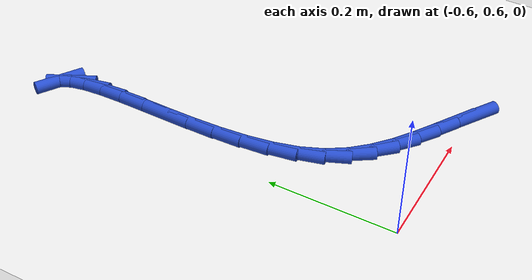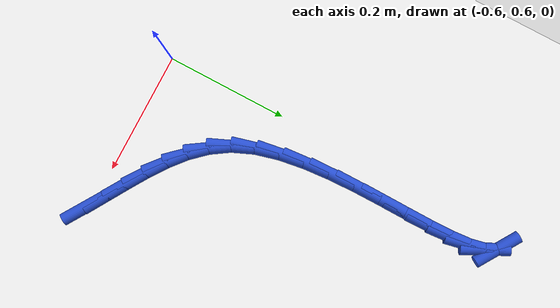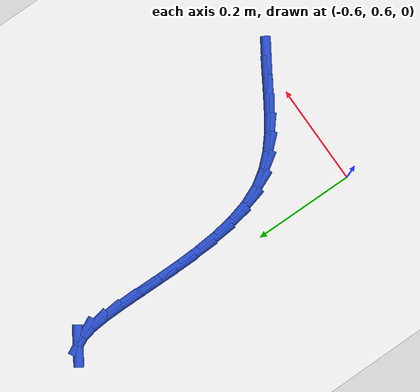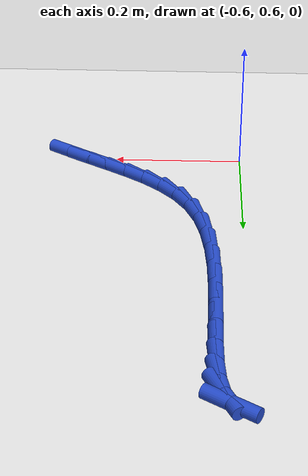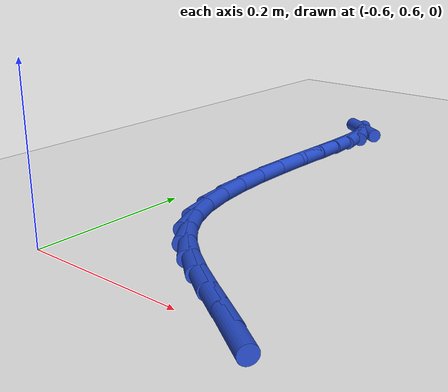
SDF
<sdf version="1.6">
 <world name="default">
  <model name="ground_plane">
   <static>1</static>
   <link name="link">
    <collision name="collision">
     <geometry><plane><normal>0 0 1</normal><size>100 100</size></plane></geometry>
     <surface><friction><ode><mu>100</mu><mu2>50</mu2></ode></friction></surface>
    </collision>
    <visual name="visual">
     <cast_shadows>0</cast_shadows>
     <geometry><plane><normal>0 0 1</normal><size>100 100</size></plane></geometry>
     <material>
      <script><uri>file://media/materials/scripts/gazebo.material</uri><name>Gazebo/WhiteGlow</name></script>
     </material>
    </visual>
   </link>
  </model>
  <model name="line">
   <link name="link_20">
    <pose>-0.3271856868290107 0.594201679285389 0.01 0 1.57 -0.566697601157017</pose>
    <collision name="collision">
     <geometry><cylinder><radius>0.01</radius><length>0.08</length></cylinder></geometry>
    </collision>
    <visual name="visual">
     <material>
      <script><name>Gazebo/Blue</name><uri>file://media/materials/scripts/gazebo.material</uri></script>
     </material>
     <geometry><cylinder><radius>0.01</radius><length>0.08</length></cylinder></geometry>
    </visual>
   </link>
   <link name="link_21">
    <pose>-0.35832002851226646 0.6140130592247995 0.01 0 1.57 -0.5486065865079678</pose>
    <collision name="collision">
     <geometry><cylinder><radius>0.01</radius><length>0.08</length></cylinder></geometry>
    </collision>
    <visual name="visual">
     <material>
      <script><name>Gazebo/Blue</name><uri>file://media/materials/scripts/gazebo.material</uri></script>
     </material>
     <geometry><cylinder><radius>0.01</radius><length>0.08</length></cylinder></geometry>
    </visual>
   </link>
   <link name="link_22">
    <pose>-0.389634353394275 0.633152050604905 0.01 0 1.57 -0.5631857956983269</pose>
    <collision name="collision">
     <geometry><cylinder><radius>0.01</radius><length>0.08</length></cylinder></geometry>
    </collision>
    <visual name="visual">
     <material>
      <script><name>Gazebo/Blue</name><uri>file://media/materials/scripts/gazebo.material</uri></script>
     </material>
     <geometry><cylinder><radius>0.01</radius><length>0.08</length></cylinder></geometry>
    </visual>
   </link>
   <link name="link_23">
    <pose>-0.4203161210820322 0.6525244099516091 0.01 0 1.57 -0.6136507816888855</pose>
    <collision name="collision">
     <geometry><cylinder><radius>0.01</radius><length>0.08</length></cylinder></geometry>
    </collision>
    <visual name="visual">
     <material>
      <script><name>Gazebo/Blue</name><uri>file://media/materials/scripts/gazebo.material</uri></script>
     </material>
     <geometry><cylinder><radius>0.01</radius><length>0.08</length></cylinder></geometry>
    </visual>
   </link>
   <link name="link_24">
    <pose>-0.449513377822686 0.6730899920745204 0.01 0 1.57 -0.7020463870780098</pose>
    <collision name="collision">
     <geometry><cylinder><radius>0.01</radius><length>0.08</length></cylinder></geometry>
    </collision>
    <visual name="visual">
     <material>
      <script><name>Gazebo/Blue</name><uri>file://media/materials/scripts/gazebo.material</uri></script>
     </material>
     <geometry><cylinder><radius>0.01</radius><length>0.08</length></cylinder></geometry>
    </visual>
   </link>
   <link name="link_25">
    <pose>-0.47637416986338416 0.6958086517832456 0.01 0 1.57 -0.8289876168616216</pose>
    <collision name="collision">
     <geometry><cylinder><radius>0.01</radius><length>0.08</length></cylinder></geometry>
    </collision>
    <visual name="visual">
     <material>
      <script><name>Gazebo/Blue</name><uri>file://media/materials/scripts/gazebo.material</uri></script>
     </material>
     <geometry><cylinder><radius>0.01</radius><length>0.08</length></cylinder></geometry>
    </visual>
   </link>
   <link name="link_26">
    <pose>-0.5000465434512743 0.721640243887393 0.01 0 1.57 -0.9898704752180619</pose>
    <collision name="collision">
     <geometry><cylinder><radius>0.01</radius><length>0.08</length></cylinder></geometry>
    </collision>
    <visual name="visual">
     <material>
      <script><name>Gazebo/Blue</name><uri>file://media/materials/scripts/gazebo.material</uri></script>
     </material>
     <geometry><cylinder><radius>0.01</radius><length>0.08</length></cylinder></geometry>
    </visual>
   </link>
   <link name="link_27">
    <pose>-0.5196785448335044 0.7515446231965703 0.01 0 1.57 -1.167995326273967</pose>
    <collision name="collision">
     <geometry><cylinder><radius>0.01</radius><length>0.08</length></cylinder></geometry>
    </collision>
    <visual name="visual">
     <material>
      <script><name>Gazebo/Blue</name><uri>file://media/materials/scripts/gazebo.material</uri></script>
     </material>
     <geometry><cylinder><radius>0.01</radius><length>0.08</length></cylinder></geometry>
    </visual>
   </link>
   <link name="link_28">
    <pose>-0.5345123991988237 0.7863578008443877 0.01 0 1.57 -1.3154110028252621</pose>
    <collision name="collision">
     <geometry><cylinder><radius>0.01</radius><length>0.08</length></cylinder></geometry>
    </collision>
    <visual name="visual">
     <material>
      <script><name>Gazebo/Blue</name><uri>file://media/materials/scripts/gazebo.material</uri></script>
     </material>
     <geometry><cylinder><radius>0.01</radius><length>0.08</length></cylinder></geometry>
    </visual>
   </link>
   <link name="link_29">
    <pose>-0.5447664202226732 0.8256322485209764 0.01 0 1.57 -1.4198193740194556</pose>
    <collision name="collision">
     <geometry><cylinder><radius>0.01</radius><length>0.08</length></cylinder></geometry>
    </collision>
    <visual name="visual">
     <material>
      <script><name>Gazebo/Blue</name><uri>file://media/materials/scripts/gazebo.material</uri></script>
     </material>
     <geometry><cylinder><radius>0.01</radius><length>0.08</length></cylinder></geometry>
    </visual>
   </link>
   <link name="link_30">
    <pose>-0.5512365049749113 0.8681609257628657 0.01 0 1.57 -1.4926543325168504</pose>
    <collision name="collision">
     <geometry><cylinder><radius>0.01</radius><length>0.08</length></cylinder></geometry>
    </collision>
    <visual name="visual">
     <material>
      <script><name>Gazebo/Blue</name><uri>file://media/materials/scripts/gazebo.material</uri></script>
     </material>
     <geometry><cylinder><radius>0.01</radius><length>0.08</length></cylinder></geometry>
    </visual>
   </link>
   <link name="link_31">
    <pose>-0.554726083556173 0.9127268863016678 0.01 0 1.57 -1.5418859090628172</pose>
    <collision name="collision">
     <geometry><cylinder><radius>0.01</radius><length>0.08</length></cylinder></geometry>
    </collision>
    <visual name="visual">
     <material>
      <script><name>Gazebo/Blue</name><uri>file://media/materials/scripts/gazebo.material</uri></script>
     </material>
     <geometry><cylinder><radius>0.01</radius><length>0.08</length></cylinder></geometry>
    </visual>
   </link>
   <link name="link_32">
    <pose>-0.5560385860670943 0.9581131838689949 0.01 0 1.57 1.5694372726779966</pose>
    <collision name="collision">
     <geometry><cylinder><radius>0.01</radius><length>0.08</length></cylinder></geometry>
    </collision>
    <visual name="visual">
     <material>
      <script><name>Gazebo/Blue</name><uri>file://media/materials/scripts/gazebo.material</uri></script>
     </material>
     <geometry><cylinder><radius>0.01</radius><length>0.08</length></cylinder></geometry>
    </visual>
   </link>
   <link name="link_33">
    <pose>-0.5559774426083103 1.003102872196458 0.01 0 1.57 1.5562419000715164</pose>
    <collision name="collision">
     <geometry><cylinder><radius>0.01</radius><length>0.08</length></cylinder></geometry>
    </collision>
    <visual name="visual">
     <material>
      <script><name>Gazebo/Blue</name><uri>file://media/materials/scripts/gazebo.material</uri></script>
     </material>
     <geometry><cylinder><radius>0.01</radius><length>0.08</length></cylinder></geometry>
    </visual>
   </link>
   <link name="link_34">
    <pose>-0.5553460832804563 1.0464790050156694 0.01 0 1.57 1.5609769630410781</pose>
    <collision name="collision">
     <geometry><cylinder><radius>0.01</radius><length>0.08</length></cylinder></geometry>
    </collision>
    <visual name="visual">
     <material>
      <script><name>Gazebo/Blue</name><uri>file://media/materials/scripts/gazebo.material</uri></script>
     </material>
     <geometry><cylinder><radius>0.01</radius><length>0.08</length></cylinder></geometry>
    </visual>
   </link>
   <link name="link_35">
    <pose>-0.5549479381841682 1.0870246360582414 0.01 0 1.57 -1.5533041104709742</pose>
    <collision name="collision">
     <geometry><cylinder><radius>0.01</radius><length>0.08</length></cylinder></geometry>
    </collision>
    <visual name="visual">
     <material>
      <script><name>Gazebo/Blue</name><uri>file://media/materials/scripts/gazebo.material</uri></script>
     </material>
     <geometry><cylinder><radius>0.01</radius><length>0.08</length></cylinder></geometry>
    </visual>
   </link>
   <link name="link_36">
    <pose>-0.5555864374200812 1.1235228190557849 0.01 0 1.57 -1.4916067513482636</pose>
    <collision name="collision">
     <geometry><cylinder><radius>0.01</radius><length>0.08</length></cylinder></geometry>
    </collision>
    <visual name="visual">
     <material>
      <script><name>Gazebo/Blue</name><uri>file://media/materials/scripts/gazebo.material</uri></script>
     </material>
     <geometry><cylinder><radius>0.01</radius><length>0.08</length></cylinder></geometry>
    </visual>
   </link>
   <link name="link_37">
    <pose>-0.5580650110888308 1.1547566077399125 0.01 0 1.57 -1.3667441756278378</pose>
    <collision name="collision">
     <geometry><cylinder><radius>0.01</radius><length>0.08</length></cylinder></geometry>
    </collision>
    <visual name="visual">
     <material>
      <script><name>Gazebo/Blue</name><uri>file://media/materials/scripts/gazebo.material</uri></script>
     </material>
     <geometry><cylinder><radius>0.01</radius><length>0.08</length></cylinder></geometry>
    </visual>
   </link>
   <link name="link_38">
    <pose>-0.5631870892910523 1.1795090558422356 0.01 0 1.57 -1.105183639330089</pose>
    <collision name="collision">
     <geometry><cylinder><radius>0.01</radius><length>0.08</length></cylinder></geometry>
    </collision>
    <visual name="visual">
     <material>
      <script><name>Gazebo/Blue</name><uri>file://media/materials/scripts/gazebo.material</uri></script>
     </material>
     <geometry><cylinder><radius>0.01</radius><length>0.08</length></cylinder></geometry>
    </visual>
   </link>
   <link name="link_39">
    <pose>-0.5717561021273814 1.1965632170943665 0.01 0 1.57 -0.5656851563280066</pose>
    <collision name="collision">
     <geometry><cylinder><radius>0.01</radius><length>0.08</length></cylinder></geometry>
    </collision>
    <visual name="visual">
     <material>
      <script><name>Gazebo/Blue</name><uri>file://media/materials/scripts/gazebo.material</uri></script>
     </material>
     <geometry><cylinder><radius>0.01</radius><length>0.08</length></cylinder></geometry>
    </visual>
   </link>
  </model>
 </world>
</sdf>
